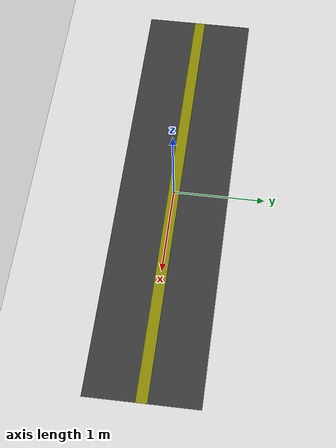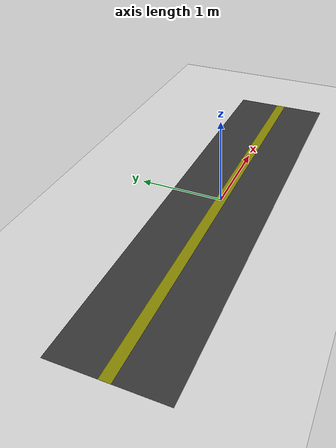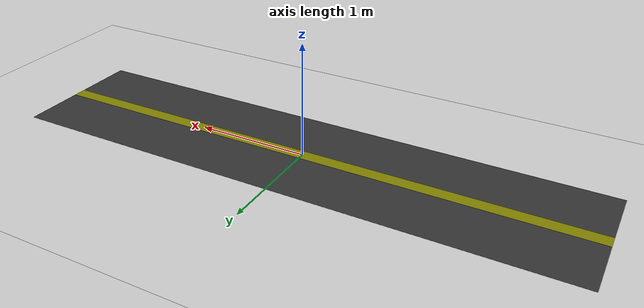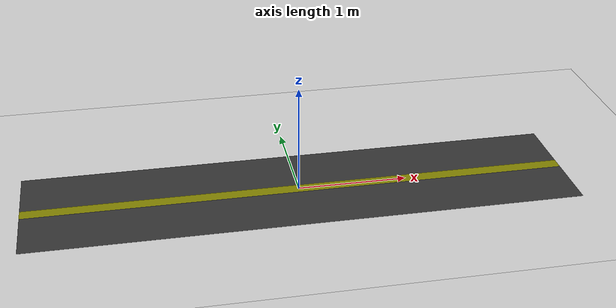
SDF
<?xml version="1.0" ?>
<sdf version="1.4">
  <world name="default">
    <gui><camera name="user_camera"><pose>0 0 9.5 0 1.5 0</pose></camera></gui>

    <include><uri>model://sun</uri></include>
    <include><uri>model://ground_plane</uri></include>

    <model name="straightroad">
      <static>true</static>
      <link name="link">
	<visual name="bar1">
	  <pose>0 0 0 0 0 0</pose>
	  <geometry>
	    <box><size>5 1.2 .001</size></box>
	  </geometry>
	  <material>
	    <ambient>0.2 0.2 0.2 1</ambient>
	    <diffuse>0.2 0.2 0.2 1</diffuse>
	    <specular>0.2 0.2 0.2 1</specular>
	    <emissive>0.2 0.2 0.2 1</emissive>
	  </material>
	</visual>
      </link>
      <link name="link2">
	<visual name="bar2">
	  <pose>0 0 0 0 0 0</pose>
	  <geometry>
	    <box><size>5 0.12 .0015</size></box>
	  </geometry>
	  <material>
	    <ambient>0.5 0.5 0 1</ambient>
	    <diffuse>0.5 0.5 0 1</diffuse>
	    <specular>0.5 0.5 0 1</specular>
	    <emissive>0.5 0.5 0 1</emissive>
	  </material>
	</visual>
      </link>
    </model>
  </world>
</sdf>
